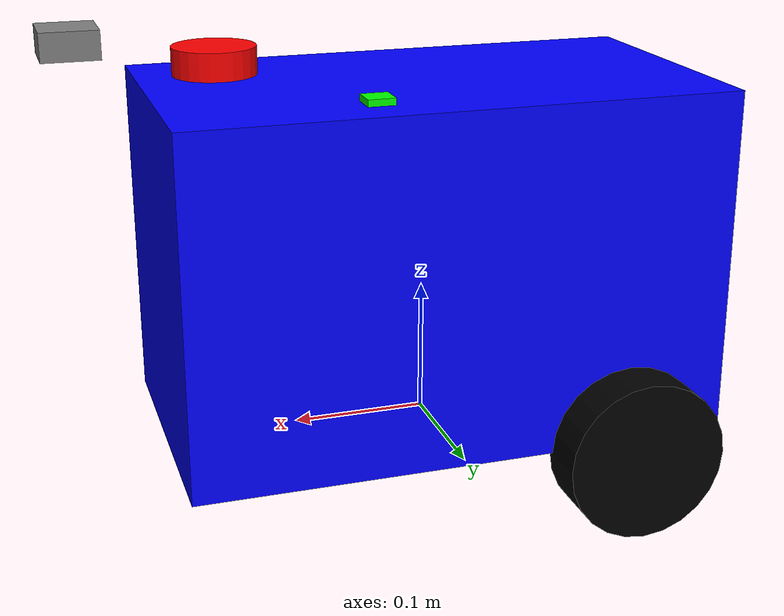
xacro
<?xml version="1.0"?>
<robot xmlns:xacro="http://ros.org/wiki/xacro" name="sam_bot">

  <!-- Define constants -->
  <xacro:property name="wheel_radius" value="0.06"/>
  <xacro:property name="wheel_width" value="0.04"/>
  <xacro:property name="body_length" value="0.4"/>
  <xacro:property name="body_width" value="0.22"/>
  <xacro:property name="body_height" value="0.26"/>

  <!-- Base footprint link -->
  <link name="base_footprint">
    <!-- footprint通常不需要visual或collision，只代表地面接觸點 -->
  </link>

  <!-- Base link -->
  <link name="base_link">
    <visual>
    <origin xyz="0 0 ${body_height/2}" rpy="0 0 0"/>
      <geometry>
        <box size="${body_length} ${body_width} ${body_height}"/>
      </geometry>
      <material name="blue">
        <color rgba="0 0 1 1"/>
      </material>
    </visual>
    <collision>
      <geometry>
        <box size="${body_length} ${body_width} ${body_height}"/>
      </geometry>
    </collision>
    <inertial>
      <mass value="1.0"/>
      <inertia ixx="0.01" iyy="0.01" izz="0.01" ixy="0" ixz="0" iyz="0"/>
      <origin xyz="0 0 ${body_height/2}" rpy="0 0 0"/>
    </inertial>
  </link>

  <!-- base_footprint 到 base_link 的固定關節 -->
  <joint name="base_footprint_to_base_link" type="fixed">
    <parent link="base_footprint"/>
    <child link="base_link"/>
    <origin xyz="0 0 0" rpy="0 0 0"/>
  </joint>

  <!-- Left wheel -->
  <link name="left_wheel">
    <visual>
      <origin rpy="1.5708 0 0" xyz="0 0 0"/>
      <geometry>
        <cylinder length="${wheel_width}" radius="${wheel_radius}"/>
      </geometry>
      <material name="black">
        <color rgba="0 0 0 1"/>
      </material>
    </visual>
    <collision>
      <geometry>
        <cylinder length="${wheel_width}" radius="${wheel_radius}"/>
      </geometry>
    </collision>
    <inertial>
      <mass value="0.1"/>
      <inertia ixx="0.001" iyy="0.001" izz="0.001" ixy="0" ixz="0" iyz="0"/>
      <origin xyz="0 0 0" rpy="1.5708 0 0"/>
    </inertial>
  </link>

  <joint name="left_wheel_joint" type="continuous">
    <parent link="base_link"/>
    <child link="left_wheel"/>
    <origin xyz="-0.125 0.125 0" rpy="0 0 0"/>
    <axis xyz="0 1 0"/>
  </joint>

  <!-- Right wheel -->
  <link name="right_wheel">
    <visual>
      <origin rpy="1.5708 0 0" xyz="0 0 0"/>
      <geometry>
        <cylinder length="${wheel_width}" radius="${wheel_radius}"/>
      </geometry>
      <material name="black">
        <color rgba="0 0 0 1"/>
      </material>
    </visual>
    <collision>
      <geometry>
        <cylinder length="${wheel_width}" radius="${wheel_radius}"/>
      </geometry>
    </collision>
    <inertial>
      <mass value="0.1"/>
      <inertia ixx="0.001" iyy="0.001" izz="0.001" ixy="0" ixz="0" iyz="0"/>
      <origin xyz="0 0 0" rpy="1.5708 0 0"/>
    </inertial>
  </link>

  <joint name="right_wheel_joint" type="continuous">
    <parent link="base_link"/>
    <child link="right_wheel"/>
    <origin xyz="-0.125 -0.125 0" rpy="0 0 0"/>
    <axis xyz="0 1 0"/>
  </joint>

  <!-- IMU Sensor -->
  <link name="imu_link">
    <visual>
      <origin xyz="0 0 0.02" rpy="0 0 0"/>
      <geometry>
        <box size="0.02 0.02 0.01"/>
      </geometry>
      <material name="green">
        <color rgba="0 1 0 1"/>
      </material>
    </visual>
  </link>
  <joint name="imu_joint" type="fixed">
    <parent link="base_link"/>
    <child link="imu_link"/>
    <origin xyz="0.055 0.07 0.24" rpy="0 0 0"/>
  </joint>

  <!-- LiDAR Sensor -->
  <link name="laser">
    <visual>
      <!--origin xyz="0.15 -0.01 0.28" rpy="0 0 0"-->
      <geometry>
        <cylinder length="0.02" radius="0.03"/>
      </geometry>
      <material name="red">
        <color rgba="1 0 0 1"/>
      </material>
    </visual>
  </link>
  <joint name="laser_joint" type="fixed">
    <parent link="base_link"/>
    <child link="laser"/>
    <origin xyz="0.15 -0.01 0.28" rpy="0 0 0"/>
  </joint>

  <!-- Camera Sensor -->
  <link name="camera_link">
    <visual>
      <origin xyz="0.05 0 0.02" rpy="0 0 0"/>
      <geometry>
        <box size="0.04 0.04 0.02"/>
      </geometry>
      <material name="gray">
        <color rgba="0.5 0.5 0.5 1"/>
      </material>
    </visual>
  </link>
  <joint name="camera_joint" type="fixed">
    <parent link="base_link"/>
    <child link="camera_link"/>
    <origin xyz="0.2 0 0.28" rpy="0 0 0"/>
  </joint>

</robot>
